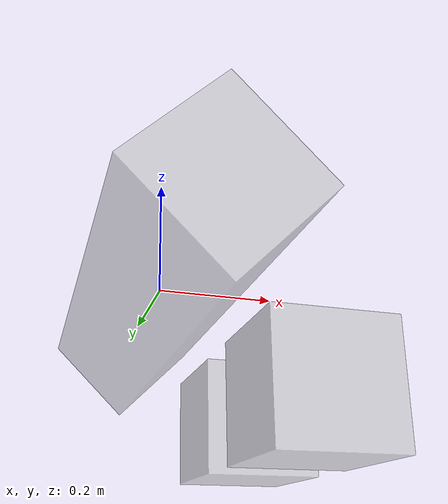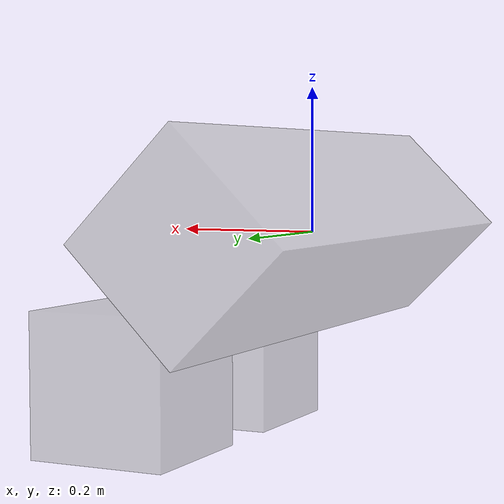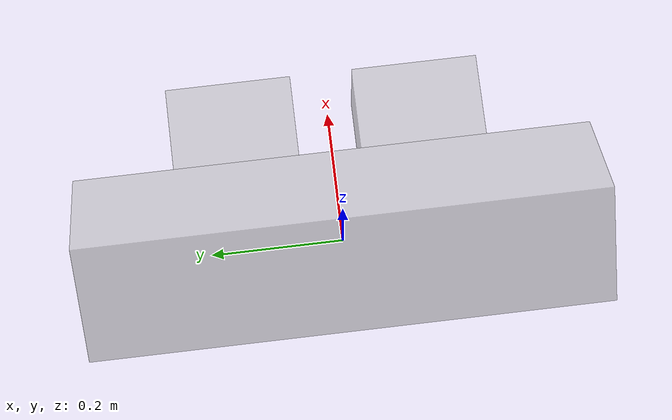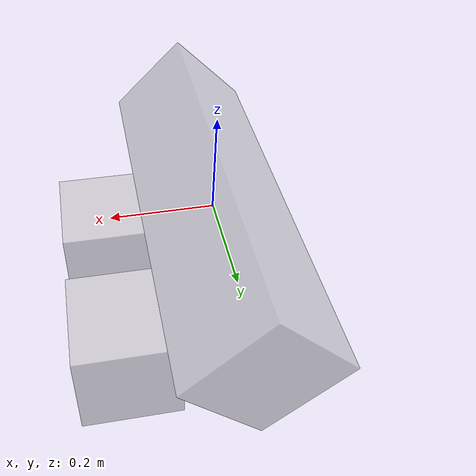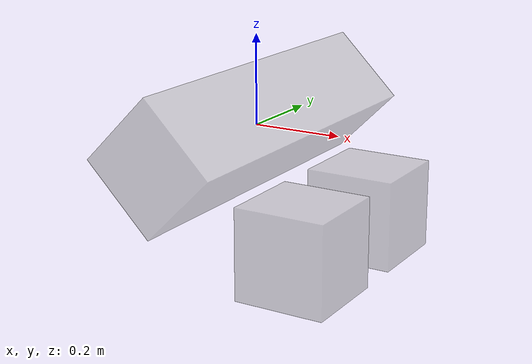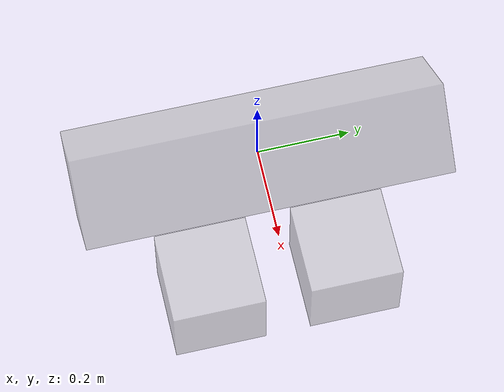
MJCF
<mujoco model="box_on_box">
  <compiler meshdir="asset" texturedir="asset" />
  <statistic extent="1.5" meansize=".05" />
  <option timestep="0.001" jacobian="sparse" gravity="0 0 0" />
  <size nconmax="3000" njmax="4000" />
  <visual>
    <rgba haze="0.15 0.25 0.35 1" />
    <quality shadowsize="4096" />
    <map stiffness="700" shadowscale="0.5" fogstart="10" fogend="15" zfar="40" haze="0.3" />
    <scale forcewidth="0.001" />
  </visual>

  <asset>
    <texture type="skybox" builtin="gradient" rgb1="0.3 0.5 0.7" rgb2="0 0 0" width="512" height="512" />
    <texture name="texplane" type="2d" builtin="checker" rgb1=".2 .3 .4" rgb2=".1 0.15 0.2" width="512" height="512" mark="cross" markrgb=".8 .8 .8" />
    <material name="matplane" reflectance="0.3" texture="texplane" texrepeat="1 1" texuniform="true" />
  </asset>

  <custom>
    <!-- All custom parameters related to contact surfaces have the prefix cs:: -->
    <text name="cs::HydroelasticContactRepresentation" data="kPolygon" />
    <numeric name="cs::VisualizeSurfaces" data="1" />
    <numeric name="cs::box1" data="5e4 5.0 0.05 0.0 0.0" />
    <numeric name="cs::box0" data="5e4 5.0 0.05 0.0 0.0" />
  </custom>

  <worldbody>
    <light directional="true" diffuse=".4 .4 .4" specular="0.1 0.1 0.1" pos="0 0 5.0" dir="0 0 -1" castshadow="false" />
    <light directional="true" diffuse=".6 .6 .6" specular="0.2 0.2 0.2" pos="0 0 4" dir="0 0 -1" />

    <body name="body_box0" pos="0 0.0 0.0" euler="0 45 0">
      <geom name="box0" type="box" size="0.1 0.4 0.1" rgba="0.7 0.7 0.7 0.5" />
    </body>

    <body name="body_box1" pos="0.2 0 -0.2">
      <joint type="slide" axis="0 0 1" limited="true" range="0 0.5" />
      <geom name="box1" type="box" pos="0 0.15 0" size="0.1 0.1 0.1" rgba="0.7 0.7 0.7 0.5" />
      <geom name="box2" type="box" pos="0 -0.15 0" size="0.1 0.1 0.1" rgba="0.7 0.7 0.7 0.5" priority="1" solimp="0.5 0.99 0.01 0.5 2" solref="0.2 1" />
    </body>
  </worldbody>
</mujoco>
